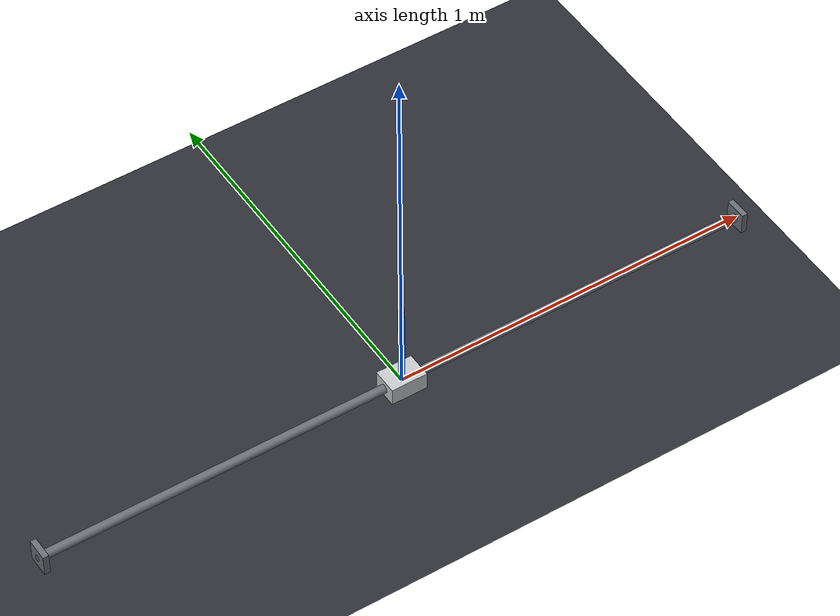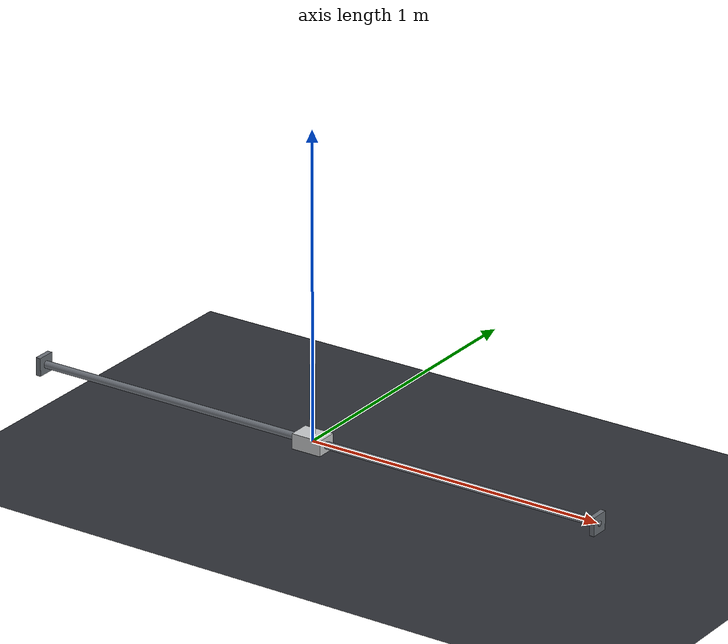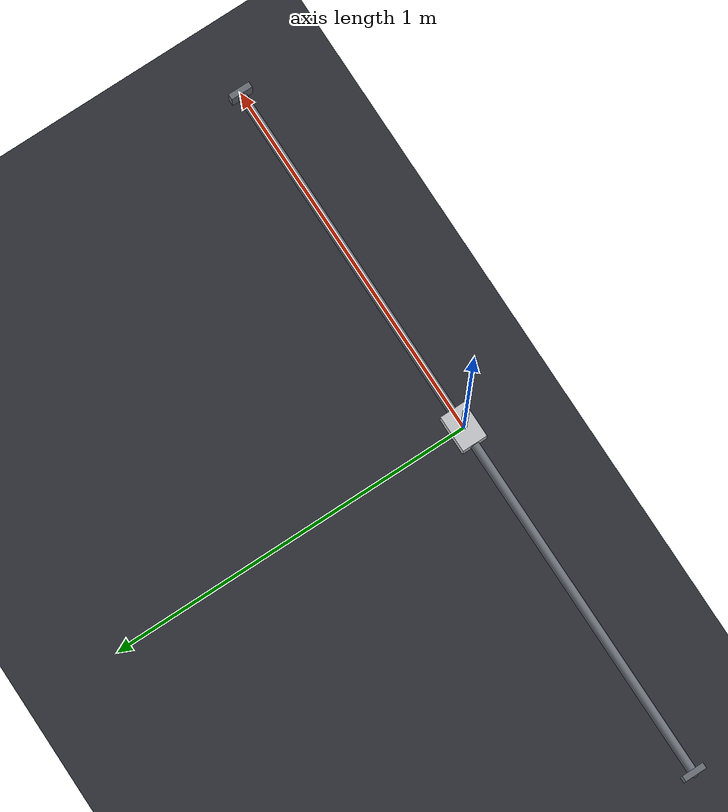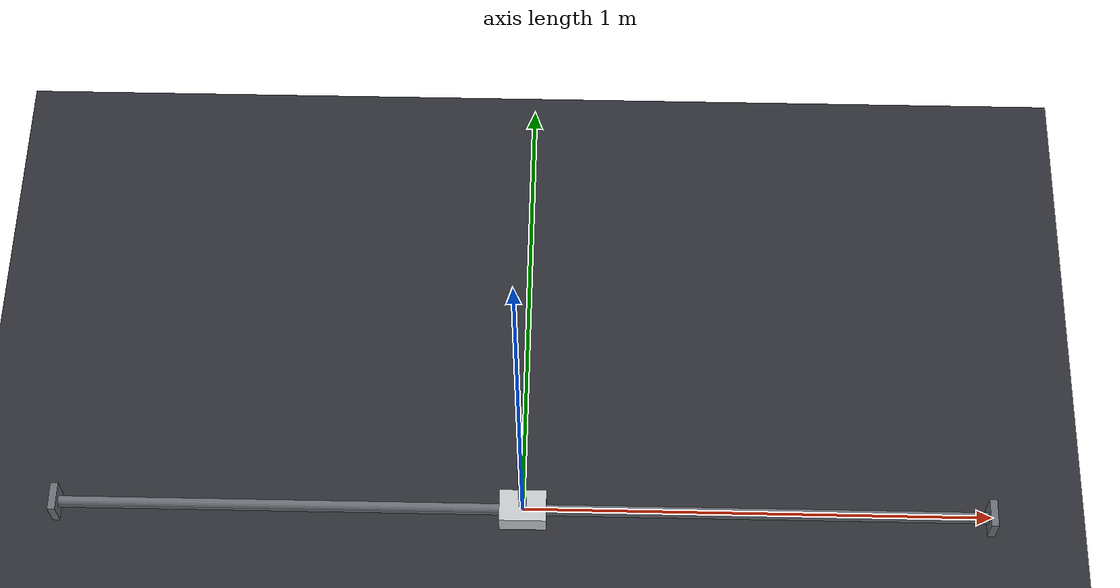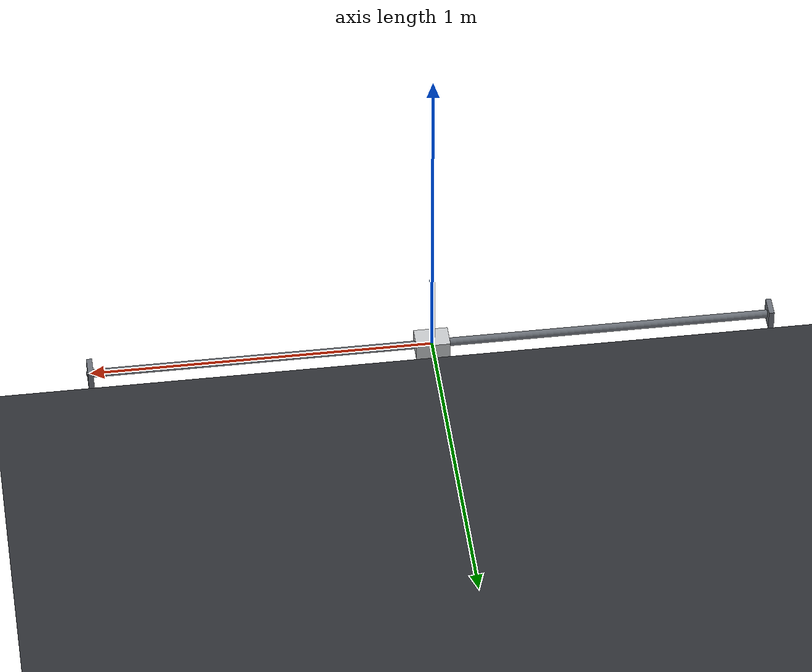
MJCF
<!-- GENERATED by tools/make_mjcf.py from config.json. Do not edit. -->
<mujoco model="pidrl_cart_pendulum">
  <compiler angle="radian" autolimits="true"/>

  <!-- timestep and gravity from config.json; RK4 to match Plant::step, so a
       comparison against core is not confounded by the integrator. -->
  <option timestep="0.002" integrator="RK4"
          gravity="0 0 -9.80665"/>

  <visual>
    <headlight ambient="0.45 0.45 0.45" diffuse="0.55 0.55 0.55"/>
    <rgba haze="0.15 0.16 0.18 1"/>
    <global azimuth="90" elevation="-12" offwidth="1280" offheight="720"/>
  </visual>

  <asset>
    <texture name="grid" type="2d" builtin="checker" width="512" height="512"
             rgb1="0.20 0.21 0.23" rgb2="0.16 0.17 0.19"/>
    <material name="grid" texture="grid" texrepeat="8 8" reflectance="0.05"/>
    <material name="steel" rgba="0.42 0.44 0.47 1"/>
    <material name="carriage" rgba="0.78 0.79 0.80 1"/>
  </asset>

  <worldbody>
    <light pos="0 -1.2 2.2" dir="0 0.4 -1" diffuse="0.7 0.7 0.7"/>
    <geom name="floor" type="plane" size="3 2 0.05" pos="0 0 -0.35"
          material="grid" contype="0" conaffinity="0"/>

    <!-- Rail: 2 m of usable travel. Running off it is a
         termination decided in code, so this geom is visual only. -->
    <geom name="rail" type="capsule" fromto="-1 0 0 1 0 0"
          size="0.012" material="steel" contype="0" conaffinity="0"/>
    <geom name="stop_left" type="box" pos="-1 0 0" size="0.008 0.03 0.03"
          material="steel" contype="0" conaffinity="0"/>
    <geom name="stop_right" type="box" pos="1 0 0" size="0.008 0.03 0.03"
          material="steel" contype="0" conaffinity="0"/>

    <body name="cart" pos="0 0 0">
      <joint name="slide" type="slide" axis="1 0 0"
             range="-1 1"/>
      <inertial pos="0 0 0" mass="0.7"
                diaginertia="0.000355833333 0.000355833333 0.000355833333"/>
      <geom name="carriage" type="box" size="0.05 0.035 0.025" material="carriage"
            contype="0" conaffinity="0"/>
      <body name="link1" pos="0 0 0">
        <joint name="theta1" type="hinge" axis="0 1 0" damping="0"/>
        <inertial pos="0 0 0.125" mass="0.12"
                  diaginertia="0.000625 0.000625 6.25e-07"/>
        <geom name="rod1" type="capsule" fromto="0 0 0 0 0 0.25"
              size="0.008" rgba="0.16 0.47 0.84 1" contype="0" conaffinity="0"/>
        <geom name="pivot1" type="sphere" pos="0 0 0" size="0.014"
              rgba="0.92 0.41 0.20 1" contype="0" conaffinity="0"/>
      </body>
    </body>
  </worldbody>

  <actuator>
    <position name="cart_drive" joint="slide" kp="8000" kv="80"
              ctrlrange="-1 1"/>
  </actuator>

  <sensor>
    <jointpos name="cart_x" joint="slide"/>
    <jointvel name="cart_v" joint="slide"/>
  </sensor>

  <keyframe>
    <!-- Hanging at rest: the state every episode starts from. -->
    <key name="hanging" qpos="0 3.14159265358979"/>
    <key name="upright" qpos="0 0"/>
  </keyframe>
</mujoco>
